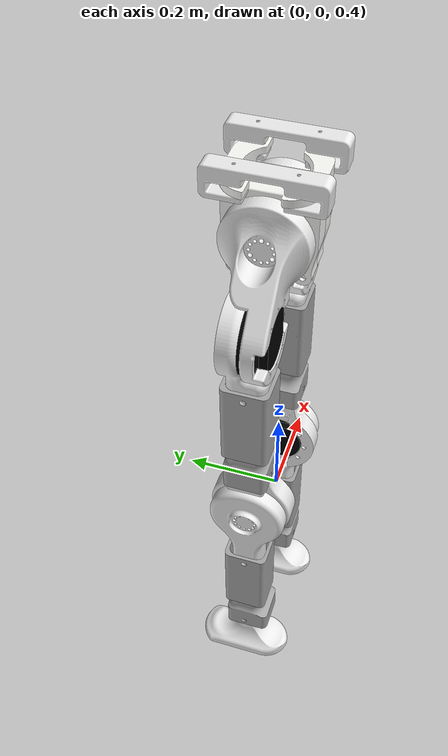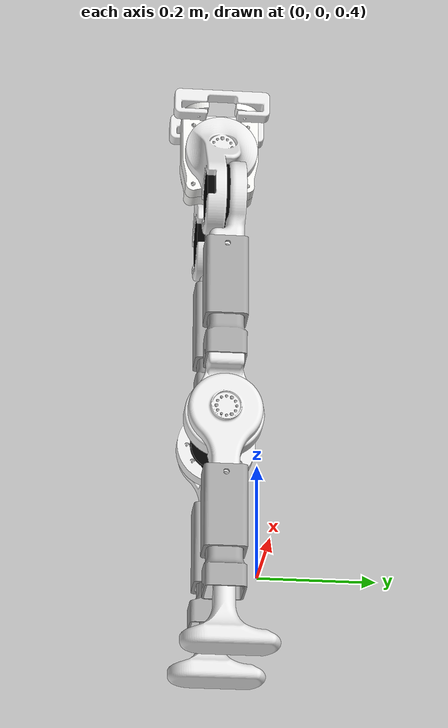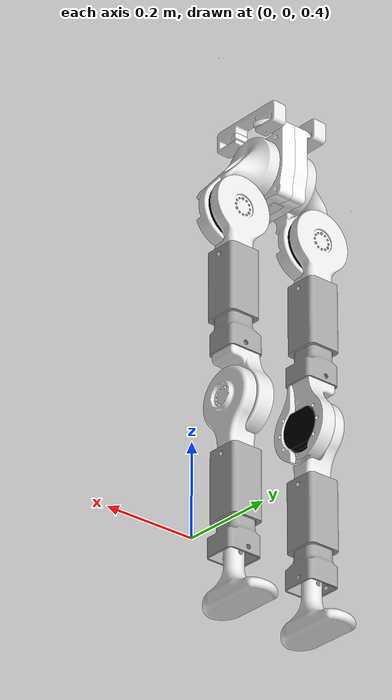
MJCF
This XML file does not appear to have any style information associated with it. The document tree is shown below.
<mujoco model="main_assembly">
<compiler angle="radian" meshdir="main_assembly/meshes"/>
<asset>
<mesh name="hip_joint_aluminium_rect_v13" content_type="model/stl" file="hip_joint_aluminium_rect_v13.stl"/>
<mesh name="hip_joint_aluminium_rect_v13_1" content_type="model/stl" file="hip_joint_aluminium_rect_v13_1.stl"/>
<mesh name="Part_1" content_type="model/stl" file="Part_1.stl"/>
<mesh name="Part_1_1" content_type="model/stl" file="Part_1_1.stl"/>
<mesh name="Part_1_3" content_type="model/stl" file="Part_1_3.stl"/>
<mesh name="Part_1_6" content_type="model/stl" file="Part_1_6.stl"/>
<mesh name="Part_1_7" content_type="model/stl" file="Part_1_7.stl"/>
<mesh name="Part_1_4" content_type="model/stl" file="Part_1_4.stl"/>
<mesh name="Part_1_5" content_type="model/stl" file="Part_1_5.stl"/>
<mesh name="Part_1_2" content_type="model/stl" file="Part_1_2.stl"/>
<mesh name="Part_2" content_type="model/stl" file="Part_2.stl"/>
<mesh name="Part_2_2" content_type="model/stl" file="Part_2_2.stl"/>
<mesh name="Part_2_1" content_type="model/stl" file="Part_2_1.stl"/>
</asset>
<worldbody>
<body name="base" pos="0 0 1.2">
<freejoint/>
<inertial pos="0 0 0" mass="2" diaginertia="0.05 0.05 0.05"/>
<geom pos="-0.553785 -0.104576 0.206518" type="mesh" contype="2" conaffinity="1" group="1" density="0" rgba="0.615686 0.811765 0.929412 1" mesh="Part_2_1"/>
<geom pos="-0.0319946 0.0915417 0.261464" type="mesh" contype="2" conaffinity="1" group="1" density="0" rgba="0.615686 0.811765 0.929412 1" mesh="Part_2_1"/>
<geom pos="-0.240875 -0.0458792 0.168557" type="mesh" contype="2" conaffinity="1" group="1" density="0" rgba="0.964706 0.964706 0.952941 1" mesh="hip_joint_aluminium_rect_v13_1"/>
<geom pos="-0.224875 -0.0458792 0.088557" quat="-0.499999 0.500001 -0.500001 -0.499999" type="mesh" contype="2" conaffinity="1" group="1" density="0" rgba="0 0 0 1" mesh="Part_1"/>
<geom pos="-0.203332 -0.0459149 0.171557" quat="0.707105 0 0 0.707108" type="mesh" contype="2" conaffinity="1" group="1" density="0" rgba="0.917647 0.917647 0.917647 1" mesh="Part_1_1"/>
<geom pos="-0.240875 -0.0458792 0.168557" type="mesh" contype="2" conaffinity="1" group="1" density="0" rgba="0.964706 0.964706 0.952941 1" mesh="hip_joint_aluminium_rect_v13"/>
<geom pos="-0.278418 -0.0459149 0.171557" quat="0.707105 0 0 -0.707108" type="mesh" contype="2" conaffinity="1" group="1" density="0" rgba="0.917647 0.917647 0.917647 1" mesh="Part_1_1"/>
<geom pos="-0.256875 -0.0458792 0.088557" quat="-0.499999 0.500001 0.500001 0.499999" type="mesh" contype="2" conaffinity="1" group="1" density="0" rgba="0 0 0 1" mesh="Part_1"/>
<body name="part_2" pos="-0.184875 -0.0458792 0.088557" quat="-0.707106 9.38185e-07 -9.38186e-07 0.707107">
<inertial pos="-0.0304566 0.0105451 -0.0975075" quat="0.947643 -0.0849436 0.152418 -0.267444" mass="2.04565" diaginertia="0.00816708 0.00711064 0.00343058"/>
<joint name="revolute_1" pos="0 0 0" axis="0 -1 0" range="-1.74533 1.74533" actuatorfrcrange="-40 40"/>
<geom pos="0 -0.04 0" quat="1 0 0 0" type="mesh" contype="2" conaffinity="1" group="1" density="0" rgba="0.917647 0.917647 0.917647 1" mesh="Part_2"/>
<geom pos="0.02 0.0462922 -0.11817" quat="9.38184e-07 0.707105 0.707108 9.38187e-07" type="mesh" contype="2" conaffinity="1" group="1" density="0" rgba="0 0 0 1" mesh="Part_1"/>
<body name="part_1_8" pos="-0.02 0.0462921 -0.11817" quat="0.707107 2.48955e-12 2.48956e-12 -0.707106">
<inertial pos="0.00247842 0.0174389 -0.249943" quat="0.655793 0.0256756 0.0547849 0.752513" mass="3.60704" diaginertia="0.135687 0.129362 0.0127175"/>
<joint name="revolute_2" pos="0 0 0" axis="0 1 0" range="-0.174533 1.74533" actuatorfrcrange="-40 40"/>
<geom type="mesh" contype="2" conaffinity="1" group="1" density="0" rgba="0.917647 0.917647 0.917647 1" mesh="Part_1_2"/>
<geom pos="-0.0005 0.0160001 -0.092" quat="9.38184e-07 9.38187e-07 0.707108 0.707105" type="mesh" contype="2" conaffinity="1" group="1" density="0" rgba="0.647059 0.647059 0.647059 1" mesh="Part_1_4"/>
<geom pos="-0.000500184 0.0159996 -0.232" quat="0.707108 9.38184e-07 0.707105 -3.53553e-06" type="mesh" contype="2" conaffinity="1" group="1" density="0" rgba="0.647059 0.647059 0.647059 1" mesh="Part_1_3"/>
<geom pos="-0.000501828 3.01335e-07 -0.0469999" quat="1 -1.83661e-06 -3.67321e-06 -3.16339e-06" type="mesh" contype="2" conaffinity="1" group="1" density="0" rgba="0.917647 0.917647 0.917647 1" mesh="Part_2_2"/>
<geom pos="0.024501 0.0159988 -0.416306" quat="0.499999 0.500004 0.499996 -0.500001" type="mesh" contype="2" conaffinity="1" group="1" density="0" rgba="0 0 0 1" mesh="Part_1"/>
<body name="part_1_18" pos="-0.015499 0.0159992 -0.416306" quat="0.707107 0.707107 -7.43156e-06 3.60508e-07">
<inertial pos="-0.0191415 -0.0954818 -0.151422" quat="0.978673 0.197968 0.0449319 0.0314485" mass="2.25133" diaginertia="0.0877095 0.0726691 0.0183887"/>
<joint name="revolute_3" pos="0 0 0" axis="1 0 0" range="-1.74533 1.74533" actuatorfrcrange="-40 40"/>
<geom type="mesh" contype="2" conaffinity="1" group="1" density="0" rgba="0.917647 0.917647 0.917647 1" mesh="Part_1_5"/>
<geom pos="0.0205 -0.1085 -3.98038e-08" quat="1.76028e-12 -1.32679e-06 1 -1.32679e-06" type="mesh" contype="2" conaffinity="1" group="1" density="0" rgba="0.647059 0.647059 0.647059 1" mesh="Part_1_4"/>
<geom pos="0.0205001 -0.2485 3.31699e-07" quat="-0.500003 -0.5 0.499998 0.499999" type="mesh" contype="2" conaffinity="1" group="1" density="0" rgba="0.647059 0.647059 0.647059 1" mesh="Part_1_3"/>
<geom pos="0.0155008 -0.4035 7.61372e-07" quat="-2.23686e-06 3.60489e-07 0.707108 0.707106" type="mesh" contype="2" conaffinity="1" group="1" density="0" rgba="0.917647 0.917647 0.917647 1" mesh="Part_1_6"/>
</body>
</body>
</body>
<body name="part_1_14" pos="-0.296875 -0.0458792 0.088557" quat="-0.707107 0 0 0.707106">
<inertial pos="0.0349517 -0.00429165 -0.0975075" quat="0.981175 0.0822782 -0.145431 -0.0968306" mass="2.04565" diaginertia="0.00807851 0.00679423 0.00301225"/>
<joint name="revolute_4" pos="0 0 0" axis="0 1 0" range="-1.74533 1.74533" actuatorfrcrange="-40 40"/>
<geom type="mesh" contype="2" conaffinity="1" group="1" density="0" rgba="0.917647 0.917647 0.917647 1" mesh="Part_1_7"/>
<geom pos="0.02 -0.0462922 -0.11817" quat="9.38184e-07 -0.707105 -0.707108 9.38187e-07" type="mesh" contype="2" conaffinity="1" group="1" density="0" rgba="0 0 0 1" mesh="Part_1"/>
<body name="part_1_3" pos="-0.02 -0.0462923 -0.11817" quat="0.707109 -1.87637e-06 1.87637e-06 -0.707105">
<inertial pos="0.00247849 -0.00259441 -0.249943" quat="0.643269 -0.00551967 0.0921105 0.760059" mass="3.60704" diaginertia="0.138103 0.132739 0.0137162"/>
<joint name="revolute_5" pos="0 0 0" axis="0 1 0" range="-1.74533 0.174533" actuatorfrcrange="-40 40"/>
<geom type="mesh" contype="2" conaffinity="1" group="1" density="0" rgba="0.917647 0.917647 0.917647 1" mesh="Part_1_2"/>
<geom pos="-0.0005 0.016 -0.092" quat="9.38184e-07 9.38187e-07 -0.707108 -0.707105" type="mesh" contype="2" conaffinity="1" group="1" density="0" rgba="0.647059 0.647059 0.647059 1" mesh="Part_1_4"/>
<geom pos="-0.000500184 0.0159995 -0.232" quat="3.53554e-06 0.707108 9.38187e-07 -0.707105" type="mesh" contype="2" conaffinity="1" group="1" density="0" rgba="0.647059 0.647059 0.647059 1" mesh="Part_1_3"/>
<geom pos="-0.000500101 0.0320001 -0.0470001" quat="3.1634e-06 0 -1.83661e-06 -1" type="mesh" contype="2" conaffinity="1" group="1" density="0" rgba="0.917647 0.917647 0.917647 1" mesh="Part_2_2"/>
<geom pos="-0.0255 0.0159986 -0.416306" quat="-0.499997 0.500003 -0.500001 -0.499999" type="mesh" contype="2" conaffinity="1" group="1" density="0" rgba="0 0 0 1" mesh="Part_1"/>
<body name="part_1_9" pos="0.0145 0.0159987 -0.416306" quat="2.23685e-06 -3.6049e-07 -0.707109 -0.707104">
<inertial pos="0.00164133 -0.0968862 -0.151468" quat="0.980534 0.186863 0.0544166 -0.0259831" mass="2.25133" diaginertia="0.0873729 0.0717905 0.0183872"/>
<joint name="revolute_6" pos="0 0 0" axis="1 0 0" range="-1.74533 1.74533" actuatorfrcrange="-40 40"/>
<geom type="mesh" contype="2" conaffinity="1" group="1" density="0" rgba="0.917647 0.917647 0.917647 1" mesh="Part_1_5"/>
<geom pos="0.0205 -0.1085 0" quat="1 0 0 0" type="mesh" contype="2" conaffinity="1" group="1" density="0" rgba="0.647059 0.647059 0.647059 1" mesh="Part_1_4"/>
<geom pos="0.0205002 -0.2485 0" quat="0.707105 0 0 -0.707108" type="mesh" contype="2" conaffinity="1" group="1" density="0" rgba="0.647059 0.647059 0.647059 1" mesh="Part_1_3"/>
<geom pos="0.0204999 -0.4035 0.00500033" quat="0.707105 -0.707108 0 0" type="mesh" contype="2" conaffinity="1" group="1" density="0" rgba="0.917647 0.917647 0.917647 1" mesh="Part_1_6"/>
</body>
</body>
</body>
</body>
</worldbody>
</mujoco>
